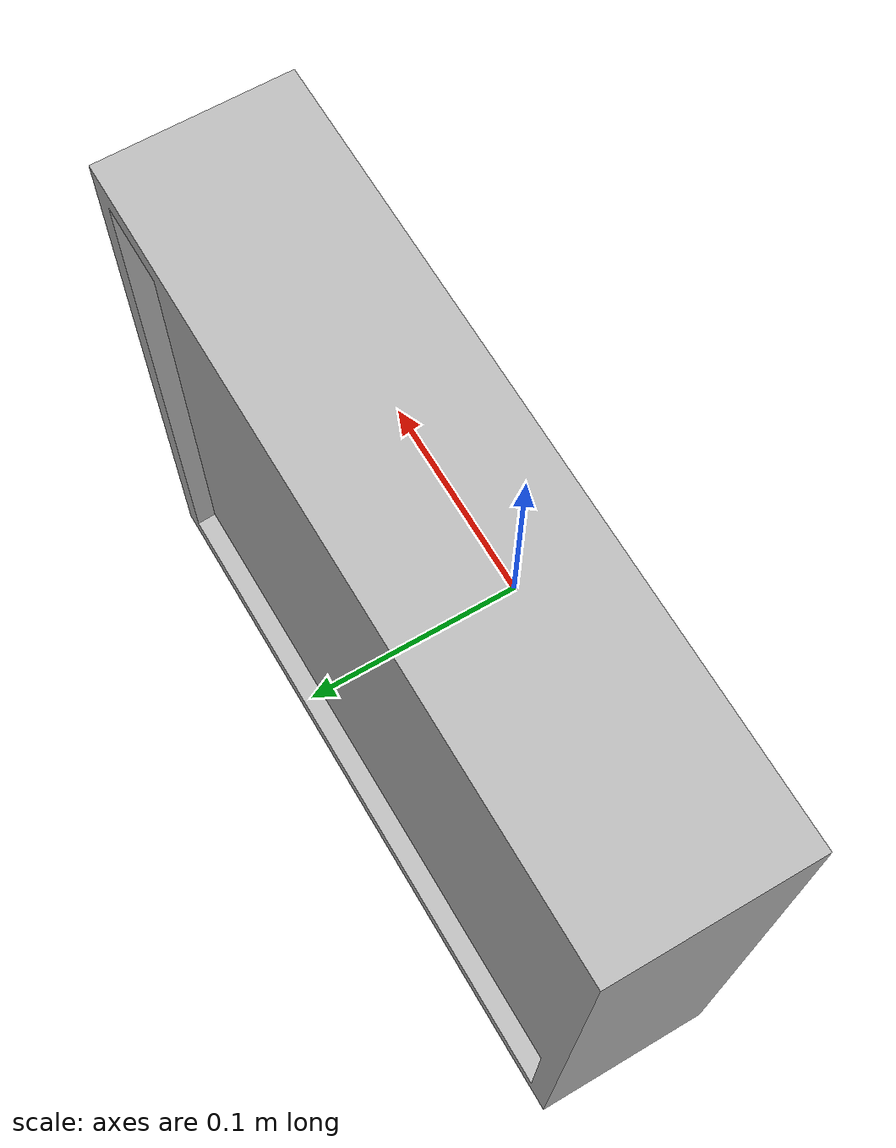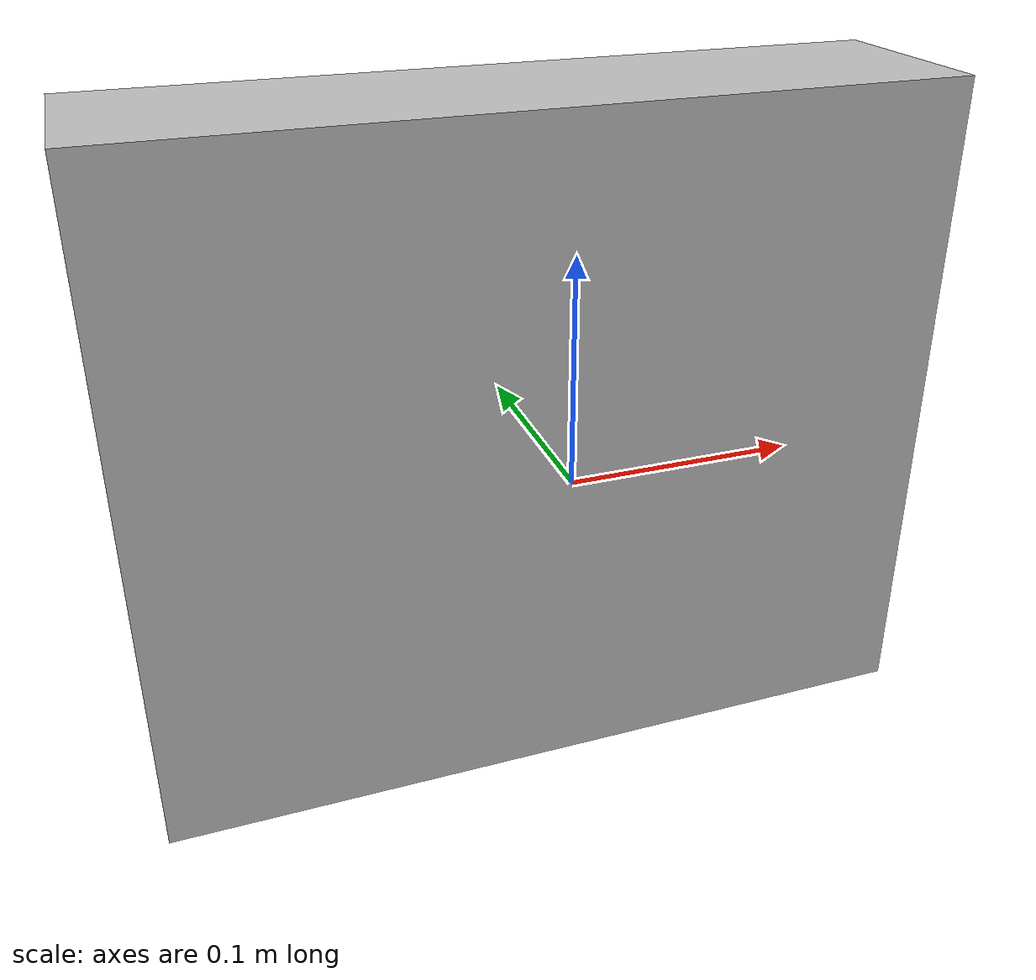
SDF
<?xml version="1.0" ?>
<sdf version="1.4">
  <model name="shelf2_box2_3a">
    <link name="body">
      <pose>0 0 0 0 0 0</pose>
      <inertial>
        <pose>  -0.005402   0.043641   0.005950 0 0 0</pose>
        <mass>0.5</mass>
        <inertia>
          <ixx>0.01</ixx>
          <ixy>0</ixy>
          <ixz>0</ixz>
          <iyy>0.01</iyy>
          <iyz>0</iyz>
          <izz>0.01</izz>
        </inertia>
      </inertial>
      <collision name="collision">
        <geometry>
          <mesh>
            <uri>model://bookshelf/shelf2_items/box2_3a/box2_3a.dae</uri>
          </mesh>
        </geometry>
      </collision>
      <visual name="visual">
        <geometry>
          <mesh>
            <uri>model://bookshelf/shelf2_items/box2_3a/box2_3a.dae</uri>
          </mesh>
        </geometry>
      </visual>
    </link>
  </model>
</sdf>
